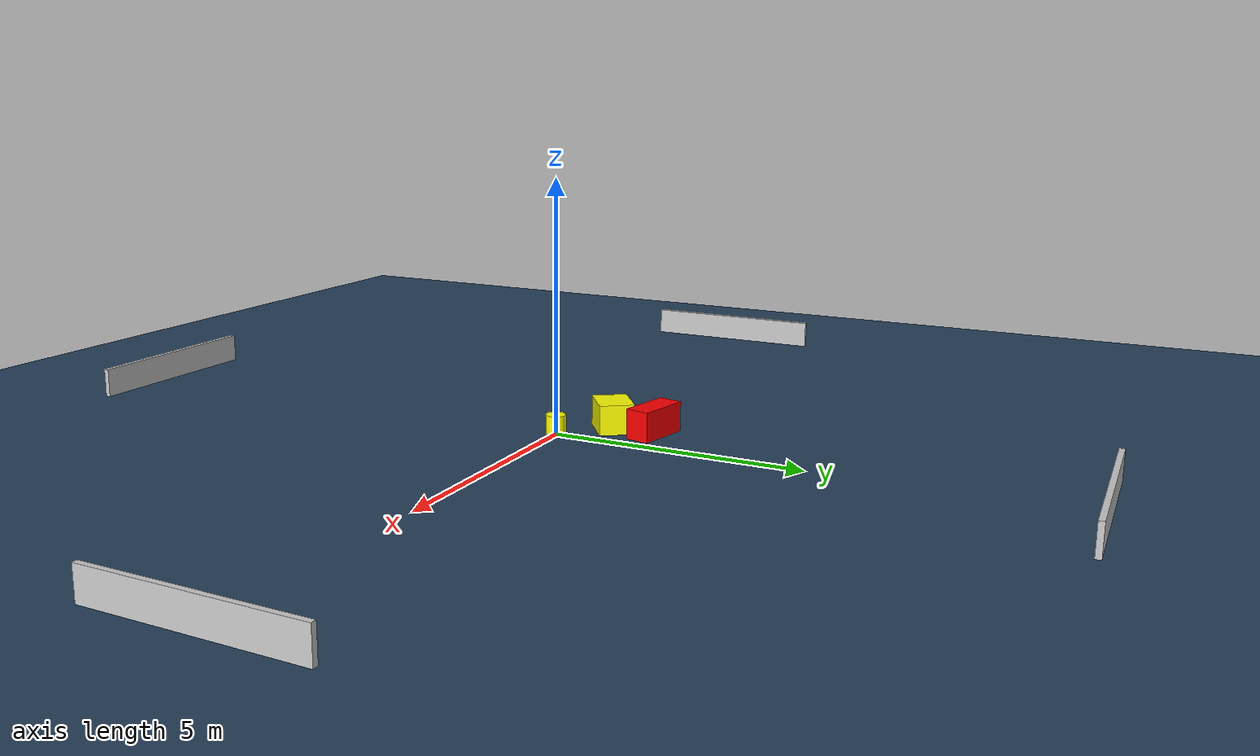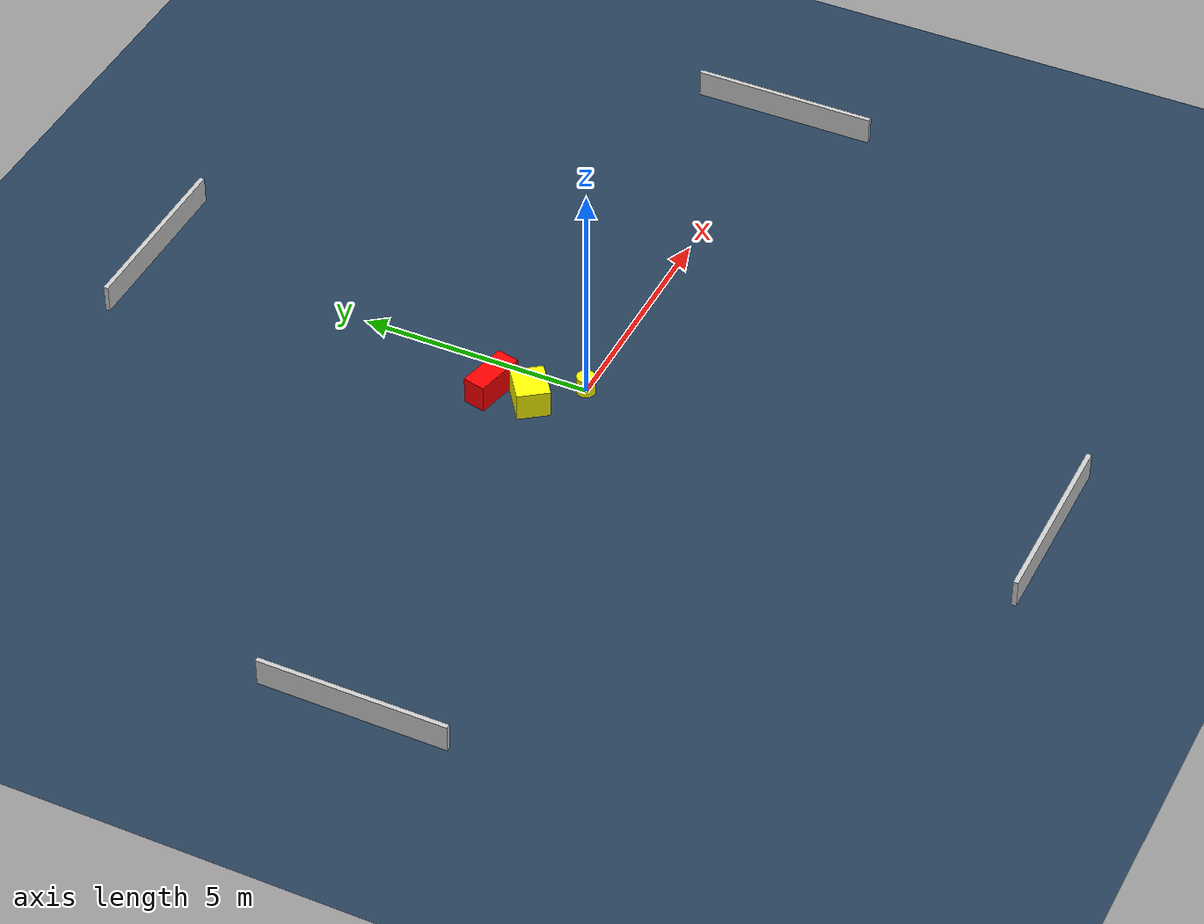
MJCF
<?xml version="1.0" ?>
<mujoco model="generated_environment">
  <option timestep="0.01" integrator="RK4" cone="elliptic"/>
  <default>
    <geom density="1"/>
  </default>
  <asset>
    <texture builtin="gradient" height="3072" name="skybox" rgb1="0.3 0.5 0.7" rgb2="0 0 0" type="skybox" width="512"/>
    <texture builtin="checker" height="300" name="groundplane" rgb1="0.2 0.3 0.4" rgb2="0.1 0.2 0.3" type="2d" width="300"/>
    <material name="groundplane" reflectance="0.2" texrepeat="5 5" texture="groundplane"/>
  </asset>
  <worldbody>
    <light dir="0 0 -1" directional="true" pos="0 0 1.5"/>
    <geom condim="3" friction="0.5 0.005 0.001" material="groundplane" name="floor" pos="0 0 0" size="0 0 0.05" type="plane"/>
    <body name="walls">
      <geom name="wall_1" condim="4" pos="-10.0 0.0 0.3" rgba="0.800000011920929 0.800000011920929 0.800000011920929 1.0" size="0.05 2.0 0.3" type="box"/>
      <geom name="wall_2" condim="4" pos="10.0 0.0 0.3" rgba="0.800000011920929 0.800000011920929 0.800000011920929 1.0" size="0.05 2.0 0.3" type="box"/>
      <geom name="wall_3" condim="4" pos="0.0 -10.0 0.3" rgba="0.800000011920929 0.800000011920929 0.800000011920929 1.0" size="2.0 0.05 0.3" type="box"/>
      <geom name="wall_4" condim="4" pos="0.0 10.0 0.3" rgba="0.800000011920929 0.800000011920929 0.800000011920929 1.0" size="2.0 0.05 0.3" type="box"/>
    </body>
    <body name="robot">
      <joint name="joint_x" type="slide" pos="0 0 0" axis="1 0 0"/>
      <joint name="joint_y" type="slide" pos="0 0 0" axis="0 1 0"/>
      <geom name="robot" type="cylinder" pos="0.0 0.0 0.2" size="0.2 0.2 0.0" mass="5.0" friction="1.0 0.005 0.0001" condim="4" rgba="1.0 1.0 0.0 1.0"/>
    </body>
    <body name="obstacle_1_movable">
      <geom name="obstacle_1_movable" condim="4" pos="-0.8198674971459913 0.8512573940913695 0.3" euler="0 0 306.08240405933407" friction="0.0 0.005 0.001" rgba="1.0 1.0 0.0 1.0" size="0.3503753159121129 0.4170373788602948 0.3" type="box" mass="0.1"/>
      <joint type="free"/>
    </body>
    <body name="obstacle_2_static">
      <geom name="obstacle_2_static" condim="4" pos="-0.8390820089697182 1.71647695740127 0.3" euler="0 0 347.307031545681" friction="0.0 0.005 0.001" rgba="1.0 0.0 0.0 1.0" size="0.5554887327388806 0.24590335371887798 0.3" type="box"/>
    </body>
  </worldbody>
  <actuator>
    <motor name="actuator_x" joint="joint_x" gear="1" ctrlrange="-1 1"/>
    <motor name="actuator_y" joint="joint_y" gear="1" ctrlrange="-1 1"/>
  </actuator>
</mujoco>
